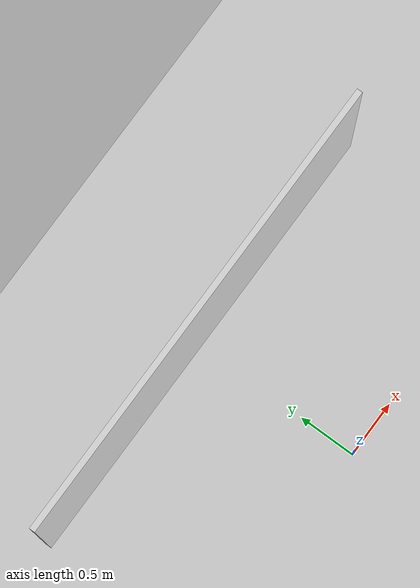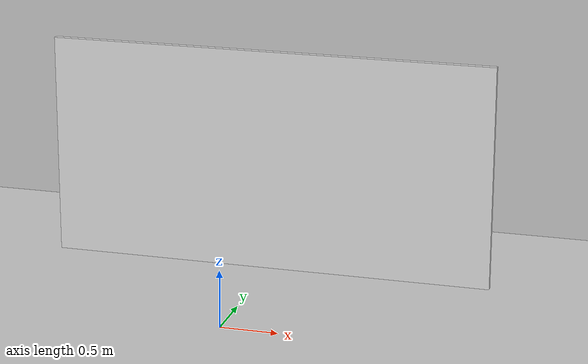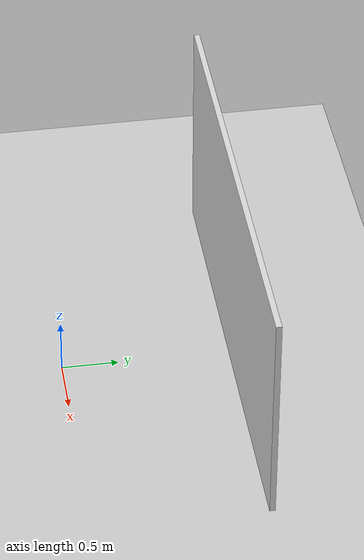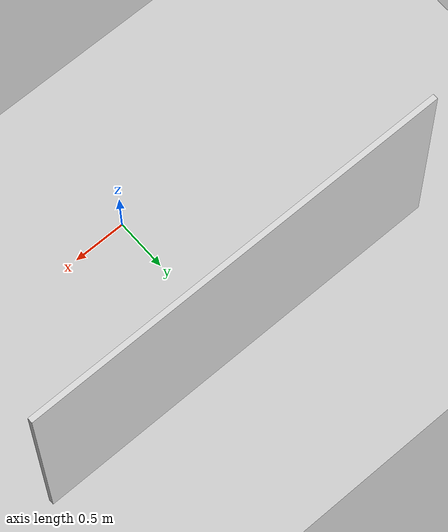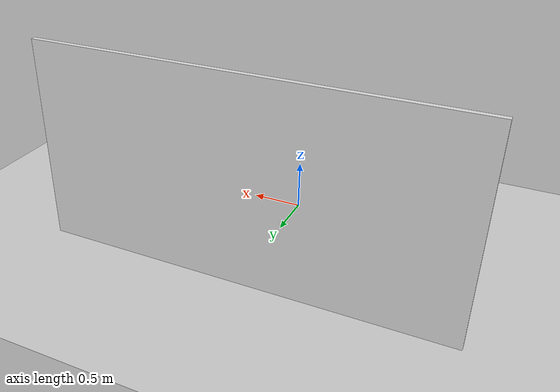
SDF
<?xml version="1.0" ?>
<!--
    Simple Gazebo world with a flat wall for calibration testing.
    Wall is ~1.5 m in front of the robot (positive X direction).
-->
<sdf version="1.6">
  <world name="calib_test_world">

    <!-- Lighting -->
    <include>
      <uri>model://sun</uri>
    </include>

    <!-- Ground plane -->
    <include>
      <uri>model://ground_plane</uri>
    </include>

    <model name="wall_front">
      <static>true</static>
      <link name="wall_link">
        <collision name="collision">
          <geometry>
            <box>
              <size>4.0 0.05 2.0</size>
            </box>
          </geometry>
        </collision>
        <visual name="visual">
          <geometry>
            <box>
              <size>4.0 0.05 2.0</size>
            </box>
          </geometry>
          <material>
            <ambient>0.7 0.7 0.7 1</ambient>
            <diffuse>0.85 0.85 0.85 1</diffuse>
          </material>
        </visual>
      </link>
      <!-- Wall center at Y=1.5m, raised so bottom is at Z=0 -->
      <pose>0 1.5 1.0 0 0 0</pose>
    </model>

    <!-- Physics settings for faster sim -->
    <physics type="ode">
      <max_step_size>0.002</max_step_size>
      <real_time_factor>1.0</real_time_factor>
      <real_time_update_rate>500</real_time_update_rate>
    </physics>

  </world>
</sdf>
